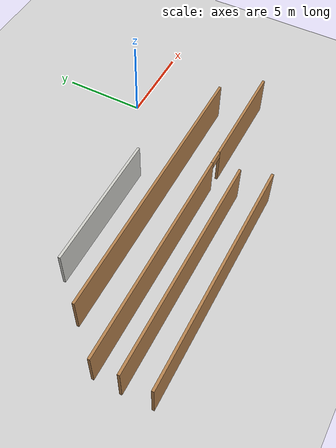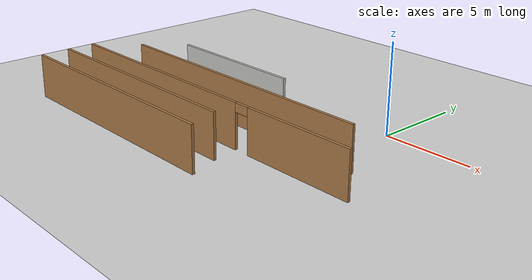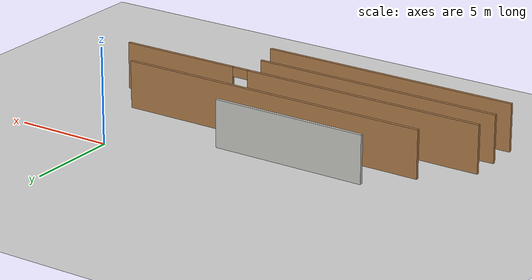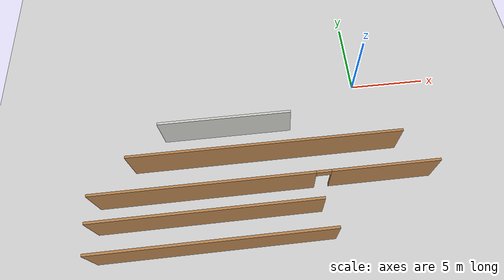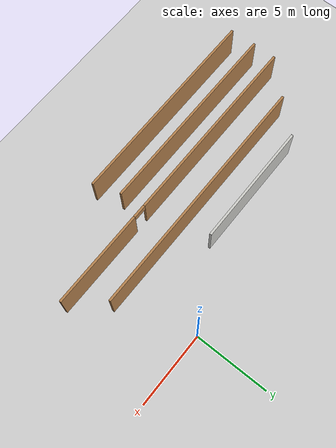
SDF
<sdf version="1.6">
 <world name="default">
  <model name="ground_plane">
   <static>1</static>
   <link name="link">
    <collision name="collision">
     <geometry><plane><normal>0 0 1</normal><size>100 100</size></plane></geometry>
     <surface><friction><ode><mu>100</mu><mu2>50</mu2></ode></friction></surface>
    </collision>
    <visual name="visual">
     <cast_shadows>0</cast_shadows>
     <geometry><plane><normal>0 0 1</normal><size>100 100</size></plane></geometry>
     <material>
      <script><uri>file://media/materials/scripts/gazebo.material</uri><name>Gazebo/Grey</name></script>
     </material>
    </visual>
   </link>
  </model>
  <model name="Building">
   <pose>5.7189 -2.01548 0 0 -0 0</pose>
   <link name="Wall_1">
    <collision name="Wall_1_Collision">
     <geometry><box><size>13.928 0.15 2.5</size></box></geometry>
     <pose>0 0 1.25 0 -0 0</pose>
    </collision>
    <visual name="Wall_1_Visual">
     <pose>0 0 1.25 0 -0 0</pose>
     <geometry><box><size>13.928 0.15 2.5</size></box></geometry>
     <material>
      <script><uri>file://media/materials/scripts/gazebo.material</uri><name>Gazebo/Wood</name></script>
      <ambient>1 1 1 1</ambient>
     </material>
     <meta><layer>0</layer></meta>
    </visual>
    <pose>-15.5637 -8.2469 0 0 -0 0</pose>
   </link>
   <link name="Wall_44">
    <pose>-12.3202 -4.9379 0 0 -0 3.14159</pose>
    <visual name="Wall_44_Visual_0">
     <pose>-7.02658 0 1.25 0 -0 0</pose>
     <geometry><box><size>6.50584 0.15 2.5</size></box></geometry>
     <material>
      <script><uri>file://media/materials/scripts/gazebo.material</uri><name>Gazebo/Wood</name></script>
      <ambient>1 1 1 1</ambient>
     </material>
     <meta><layer>0</layer></meta>
    </visual>
    <collision name="Wall_44_Collision_0">
     <geometry><box><size>6.50584 0.15 2.5</size></box></geometry>
     <pose>-7.02658 0 1.25 0 -0 0</pose>
    </collision>
    <visual name="Wall_44_Visual_1">
     <pose>3.70292 0 1.25 0 -0 0</pose>
     <geometry><box><size>13.1532 0.15 2.5</size></box></geometry>
     <material>
      <script><uri>file://media/materials/scripts/gazebo.material</uri><name>Gazebo/Wood</name></script>
      <ambient>1 1 1 1</ambient>
     </material>
     <meta><layer>0</layer></meta>
    </visual>
    <collision name="Wall_44_Collision_1">
     <geometry><box><size>13.1532 0.15 2.5</size></box></geometry>
     <pose>3.70292 0 1.25 0 -0 0</pose>
    </collision>
    <visual name="Wall_44_Visual_2">
     <pose>-3.32366 0 2.25 0 -0 0</pose>
     <geometry><box><size>0.9 0.15 0.5</size></box></geometry>
     <material>
      <script><uri>file://media/materials/scripts/gazebo.material</uri><name>Gazebo/Wood</name></script>
      <ambient>1 1 1 1</ambient>
     </material>
     <meta><layer>0</layer></meta>
    </visual>
    <collision name="Wall_44_Collision_2">
     <geometry><box><size>0.9 0.15 0.5</size></box></geometry>
     <pose>-3.32366 0 2.25 0 -0 0</pose>
    </collision>
   </link>
   <link name="Wall_52">
    <collision name="Wall_52_Collision">
     <geometry><box><size>13.439 0.15 2.5</size></box></geometry>
     <pose>0 0 1.25 0 -0 0</pose>
    </collision>
    <visual name="Wall_52_Visual">
     <pose>0 0 1.25 0 -0 0</pose>
     <geometry><box><size>13.439 0.15 2.5</size></box></geometry>
     <material>
      <script><uri>file://media/materials/scripts/gazebo.material</uri><name>Gazebo/Wood</name></script>
      <ambient>1 1 1 1</ambient>
     </material>
     <meta><layer>0</layer></meta>
    </visual>
    <pose>-15.8802 -6.5189 0 0 -0 3.14159</pose>
   </link>
   <link name="Wall_56">
    <collision name="Wall_56_Collision">
     <geometry><box><size>16.75 0.15 2.5</size></box></geometry>
     <pose>0 0 1.25 0 -0 0</pose>
    </collision>
    <visual name="Wall_56_Visual">
     <pose>0 0 1.25 0 -0 0</pose>
     <geometry><box><size>16.75 0.15 2.5</size></box></geometry>
     <material>
      <script><uri>file://media/materials/scripts/gazebo.material</uri><name>Gazebo/Wood</name></script>
      <ambient>1 1 1 1</ambient>
     </material>
     <meta><layer>0</layer></meta>
    </visual>
    <pose>-12.1773 -2.793 0 0 -0 3.14159</pose>
   </link>
   <link name="Wall_61">
    <collision name="Wall_61_Collision">
     <geometry><box><size>8.25 0.15 2.5</size></box></geometry>
     <pose>0 0 1.25 0 -0 0</pose>
    </collision>
    <visual name="Wall_61_Visual">
     <pose>0 0 1.25 0 -0 0</pose>
     <geometry><box><size>8.25 0.15 2.5</size></box></geometry>
     <material>
      <script><uri>file://media/materials/scripts/gazebo.material</uri><name>Gazebo/CeilingTiled</name></script>
      <ambient>1 1 1 1</ambient>
     </material>
     <meta><layer>0</layer></meta>
    </visual>
    <pose>-14.5801 -0.773915 0 0 -0 3.14159</pose>
   </link>
   <static>1</static>
  </model>
 </world>
</sdf>
